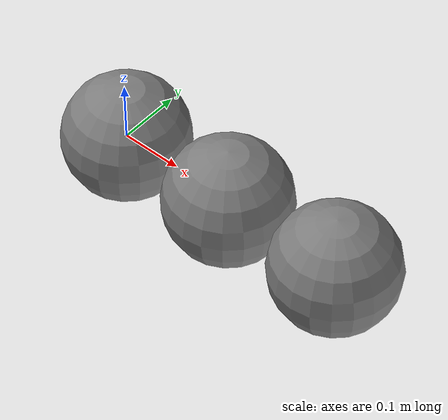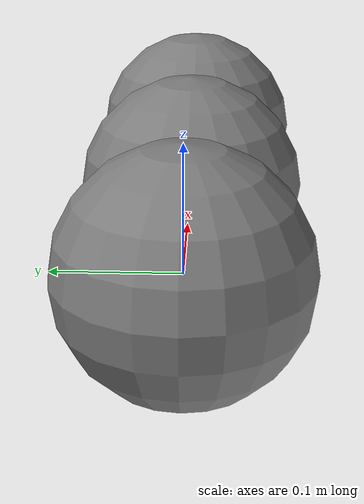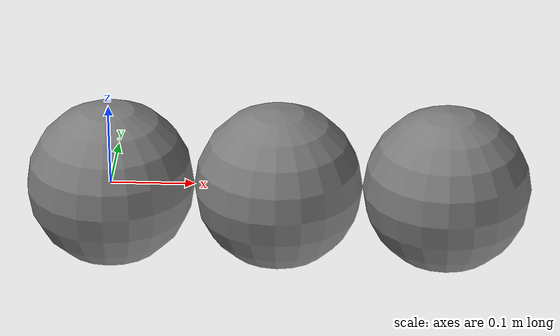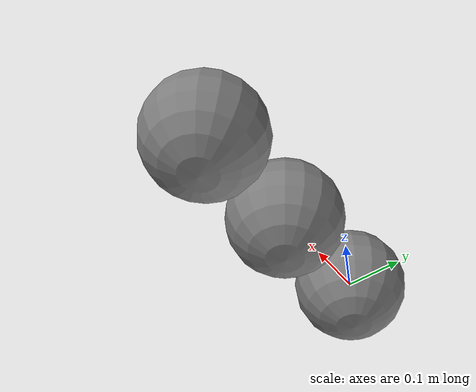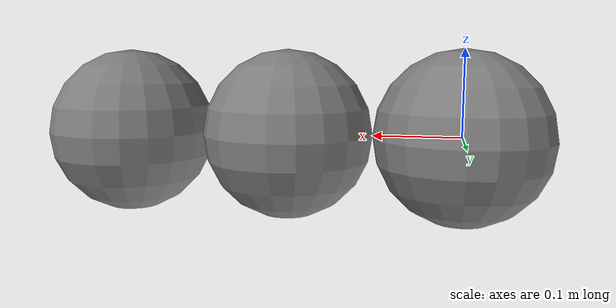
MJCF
<mujoco>
  <worldbody>
    <body name="base">
      <joint name="hinge0" type="hinge" axis="0 0 1"/>
      <geom type="sphere" size="0.1"/>
      <body name="link1" pos="0.2 0 0">
        <joint name="ball0" type="ball"/>
        <geom type="sphere" size="0.1"/>
        <body name="link2" pos="0.2 0 0">
          <joint name="hinge1" type="hinge" axis="0 1 0"/>
          <geom type="sphere" size="0.1"/>
        </body>
      </body>
    </body>
  </worldbody>
</mujoco>
